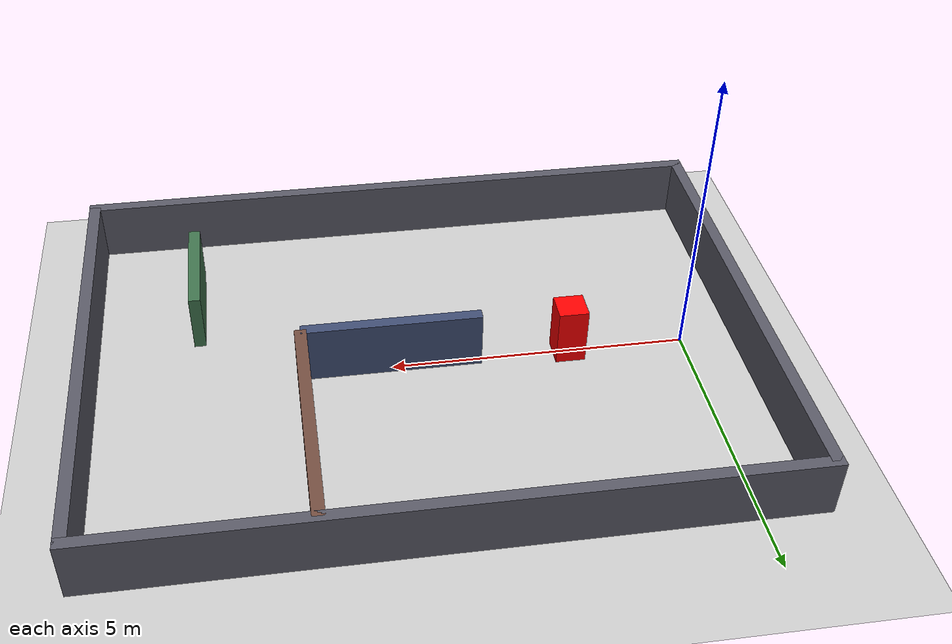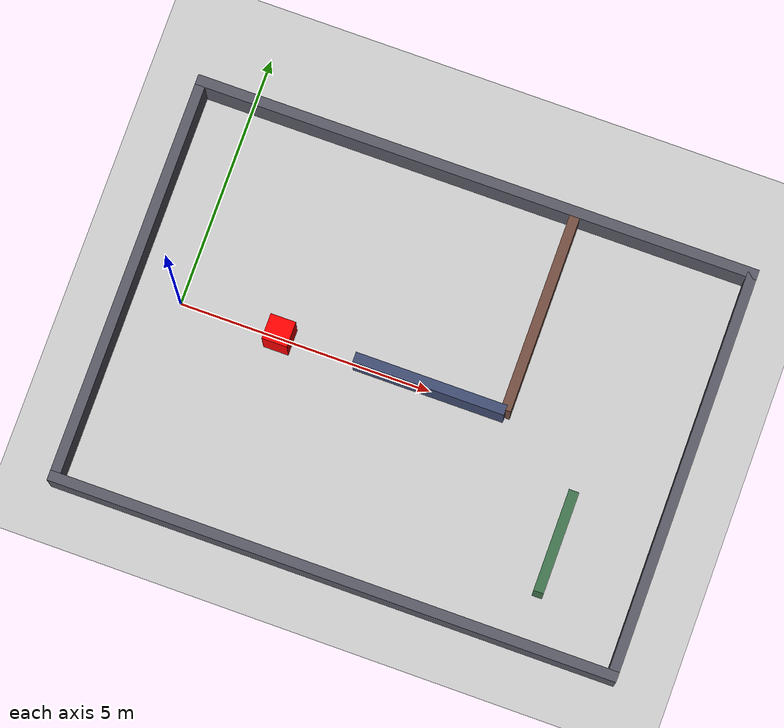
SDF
<?xml version="1.0" ?>
<sdf version="1.9">
    <world name="kd_world">

        <plugin
            filename="gz-sim-physics-system"
            name="gz::sim::systems::Physics"/>

        <plugin
            filename="gz-sim-user-commands-system"
            name="gz::sim::systems::UserCommands"/>

        <plugin
            filename="gz-sim-scene-broadcaster-system"
            name="gz::sim::systems::SceneBroadcaster"/>

        <plugin
            filename="gz-sim-sensors-system"
            name="gz::sim::systems::Sensors">
            <render_engine>ogre2</render_engine>
        </plugin>

        <plugin
            filename="gz-sim-imu-system"
            name="gz::sim::systems::Imu">
        </plugin>

        <light type="directional" name="sun">
            <cast_shadows>true</cast_shadows>
            <pose>0 0 10 0 0 0</pose>
            <diffuse>0.8 0.8 0.8 1</diffuse>
            <specular>0.2 0.2 0.2 1</specular>
            <direction>-0.5 0.1 -0.9</direction>
        </light>

        <model name="ground_plane">
            <static>true</static>

            <link name="link">
                <collision name="collision">
                    <geometry>
                        <plane>
                            <normal>0 0 1</normal>
                        </plane>
                    </geometry>
                </collision>

                <visual name="visual">
                    <geometry>
                        <plane>
                            <normal>0 0 1</normal>
                            <size>100 100</size>
                        </plane>
                    </geometry>

                    <material>
                        <ambient>0.8 0.8 0.8 1</ambient>
                        <diffuse>0.8 0.8 0.8 1</diffuse>
                    </material>
                </visual>
            </link>
        </model>

        <model name="test_box">
            <static>true</static>
            <pose>2 0 0.5 0 0 0</pose>

            <link name="link">
                <collision name="collision">
                    <geometry>
                        <box>
                            <size>0.5 0.5 1.0</size>
                        </box>
                    </geometry>
                </collision>

                <visual name="visual">
                    <geometry>
                        <box>
                            <size>0.5 0.5 1.0</size>
                        </box>
                    </geometry>

                    <material>
                        <ambient>1 0 0 1</ambient>
                        <diffuse>1 0 0 1</diffuse>
                    </material>
                </visual>
            </link>
        </model>

        <model name="arena_walls">
            <static>true</static>

            <link name="west_wall">
                <pose>-1 0 0.5 0 0 0</pose>

                <collision name="collision">
                    <geometry>
                        <box>
                            <size>0.2 8.0 1.0</size>
                        </box>
                    </geometry>
                </collision>

                <visual name="visual">
                    <geometry>
                        <box>
                            <size>0.2 8.0 1.0</size>
                        </box>
                    </geometry>

                    <material>
                        <ambient>0.35 0.35 0.4 1</ambient>
                        <diffuse>0.35 0.35 0.4 1</diffuse>
                    </material>
                </visual>
            </link>

            <link name="east_wall">
                <pose>10 0 0.5 0 0 0</pose>

                <collision name="collision">
                    <geometry>
                        <box>
                            <size>0.2 8.0 1.0</size>
                        </box>
                    </geometry>
                </collision>

                <visual name="visual">
                    <geometry>
                        <box>
                            <size>0.2 8.0 1.0</size>
                        </box>
                    </geometry>

                    <material>
                        <ambient>0.35 0.35 0.4 1</ambient>
                        <diffuse>0.35 0.35 0.4 1</diffuse>
                    </material>
                </visual>
            </link>

            <link name="north_wall">
                <pose>4.5 4 0.5 0 0 0</pose>

                <collision name="collision">
                    <geometry>
                        <box>
                            <size>11.2 0.2 1.0</size>
                        </box>
                    </geometry>
                </collision>

                <visual name="visual">
                    <geometry>
                        <box>
                            <size>11.2 0.2 1.0</size>
                        </box>
                    </geometry>

                    <material>
                        <ambient>0.35 0.35 0.4 1</ambient>
                        <diffuse>0.35 0.35 0.4 1</diffuse>
                    </material>
                </visual>
            </link>

            <link name="south_wall">
                <pose>4.5 -4 0.5 0 0 0</pose>

                <collision name="collision">
                    <geometry>
                        <box>
                            <size>11.2 0.2 1.0</size>
                        </box>
                    </geometry>
                </collision>

                <visual name="visual">
                    <geometry>
                        <box>
                            <size>11.2 0.2 1.0</size>
                        </box>
                    </geometry>

                    <material>
                        <ambient>0.35 0.35 0.4 1</ambient>
                        <diffuse>0.35 0.35 0.4 1</diffuse>
                    </material>
                </visual>
            </link>

            <link name="center_divider">
                <pose>5 0 0.5 0 0 0</pose>

                <collision name="collision">
                    <geometry>
                        <box>
                            <size>3.0 0.2 1.0</size>
                        </box>
                    </geometry>
                </collision>

                <visual name="visual">
                    <geometry>
                        <box>
                            <size>3.0 0.2 1.0</size>
                        </box>
                    </geometry>

                    <material>
                        <ambient>0.25 0.3 0.45 1</ambient>
                        <diffuse>0.25 0.3 0.45 1</diffuse>
                    </material>
                </visual>
            </link>

            <link name="north_dead_end">
                <pose>6.5 2 0.5 0 0 0</pose>

                <collision name="collision">
                    <geometry>
                        <box>
                            <size>0.2 4.0 1.0</size>
                        </box>
                    </geometry>
                </collision>

                <visual name="visual">
                    <geometry>
                        <box>
                            <size>0.2 4.0 1.0</size>
                        </box>
                    </geometry>

                    <material>
                        <ambient>0.45 0.3 0.25 1</ambient>
                        <diffuse>0.45 0.3 0.25 1</diffuse>
                    </material>
                </visual>
            </link>

            <link name="far_island">
                <pose>8.2 -2 0.5 0 0 0</pose>

                <collision name="collision">
                    <geometry>
                        <box>
                            <size>0.2 2.0 1.0</size>
                        </box>
                    </geometry>
                </collision>

                <visual name="visual">
                    <geometry>
                        <box>
                            <size>0.2 2.0 1.0</size>
                        </box>
                    </geometry>

                    <material>
                        <ambient>0.25 0.45 0.3 1</ambient>
                        <diffuse>0.25 0.45 0.3 1</diffuse>
                    </material>
                </visual>
            </link>
        </model>
    </world>
</sdf>
